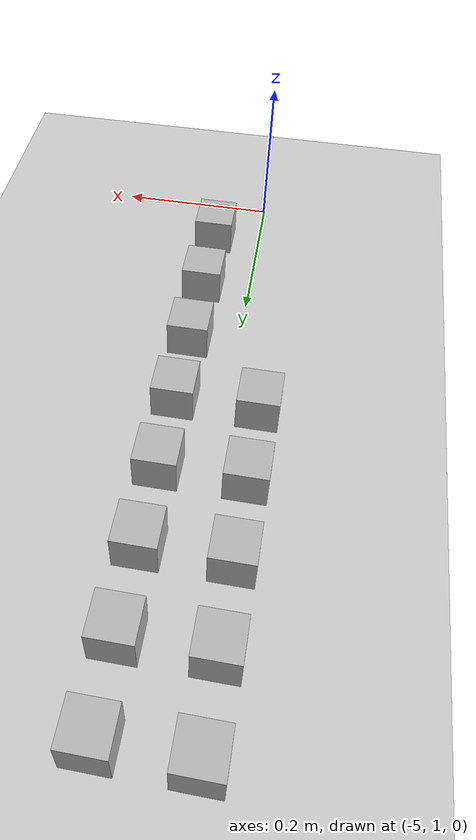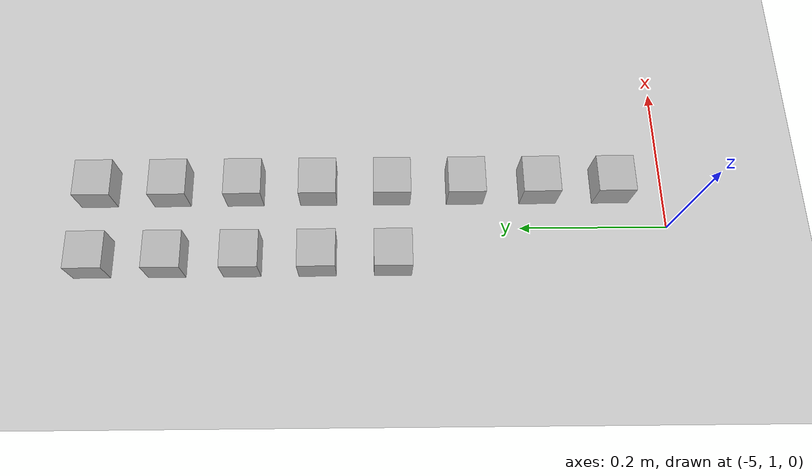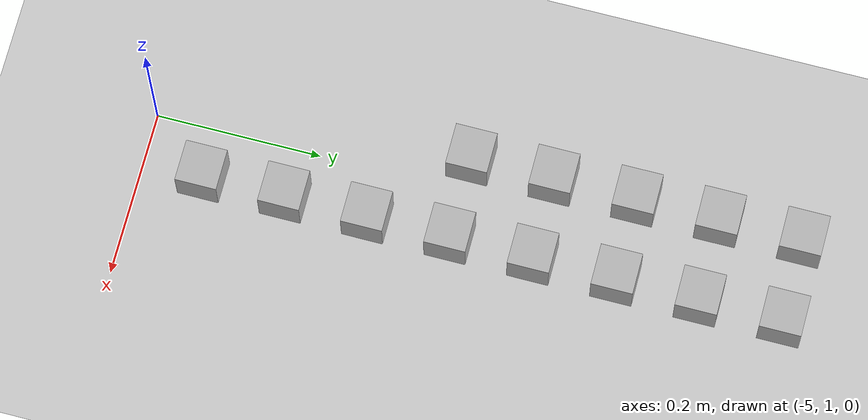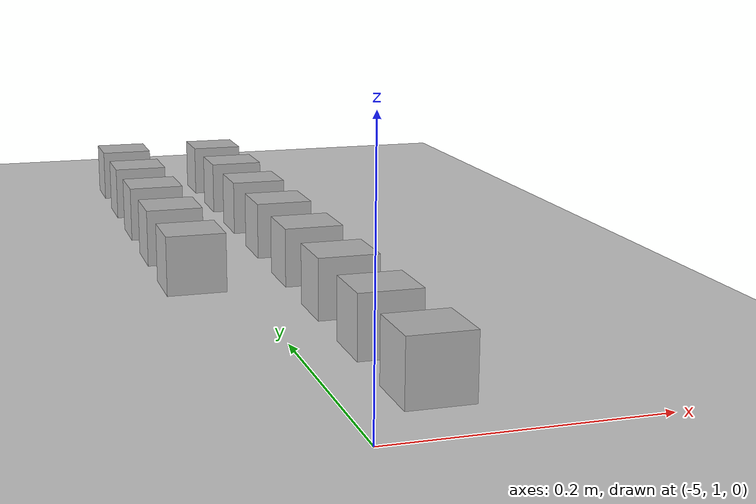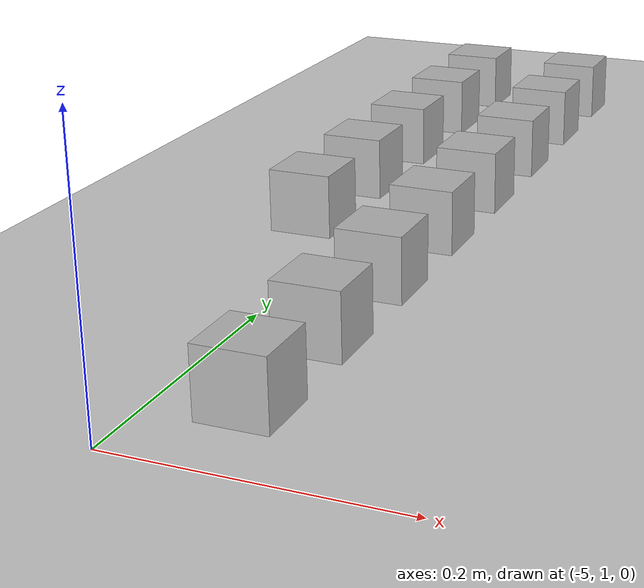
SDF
<sdf version="1.4">
 <world name="default">
  <model name="ground_plane">
   <static>1</static>
   <link name="link">
    <collision name="collision">
     <geometry><plane><normal>0 0 1</normal><size>100 100</size></plane></geometry>
     <surface><friction><ode><mu>100</mu><mu2>50</mu2></ode></friction></surface>
    </collision>
    <visual name="visual">
     <cast_shadows>0</cast_shadows>
     <geometry><plane><normal>0 0 1</normal><size>100 100</size></plane></geometry>
     <material>
      <script><uri>file://media/materials/scripts/gazebo.material</uri><name>Gazebo/Grey</name></script>
     </material>
    </visual>
    <velocity_decay><linear>0</linear><angular>0</angular></velocity_decay>
   </link>
  </model>
  <model name="at135">
   <static>0</static>
   <link name="link">
    <inertial>
     <mass>0.01</mass>
     <inertia><ixx>4e-05</ixx><ixy>0</ixy><ixz>0</ixz><iyy>4e-05</iyy><iyz>0</iyz><izz>4e-05</izz></inertia>
    </inertial>
    <visual name="visual">
     <geometry><box><size>0.05 0.05 0.05</size></box></geometry>
     <material>
      <script>
       <uri>model://at0/materials/scripts</uri>
       <uri>model://at0/materials/textures</uri>
       <name>at0/Diffuse</name>
      </script>
     </material>
    </visual>
    <collision name="collision">
     <geometry><box><size>0.05 0.05 0.05</size></box></geometry>
     <surface><friction><ode><mu>0.8</mu><mu2>0.7</mu2></ode></friction></surface>
    </collision>
    <velocity_decay><linear>0</linear><angular>0</angular></velocity_decay>
   </link>
   <pose>-4.93889 1.07373 0.025 0 -0 0</pose>
  </model>
  <model name="at143">
   <static>0</static>
   <link name="link">
    <inertial>
     <mass>0.01</mass>
     <inertia><ixx>4e-05</ixx><ixy>0</ixy><ixz>0</ixz><iyy>4e-05</iyy><iyz>0</iyz><izz>4e-05</izz></inertia>
    </inertial>
    <visual name="visual">
     <geometry><box><size>0.05 0.05 0.05</size></box></geometry>
     <material>
      <script>
       <uri>model://at0/materials/scripts</uri>
       <uri>model://at0/materials/textures</uri>
       <name>at0/Diffuse</name>
      </script>
     </material>
    </visual>
    <collision name="collision">
     <geometry><box><size>0.05 0.05 0.05</size></box></geometry>
     <surface><friction><ode><mu>0.8</mu><mu2>0.7</mu2></ode></friction></surface>
    </collision>
    <velocity_decay><linear>0</linear><angular>0</angular></velocity_decay>
   </link>
   <pose>-4.93889 1.17373 0.025 0 -0 0</pose>
  </model>
  <model name="at151">
   <static>0</static>
   <link name="link">
    <inertial>
     <mass>0.01</mass>
     <inertia><ixx>4e-05</ixx><ixy>0</ixy><ixz>0</ixz><iyy>4e-05</iyy><iyz>0</iyz><izz>4e-05</izz></inertia>
    </inertial>
    <visual name="visual">
     <geometry><box><size>0.05 0.05 0.05</size></box></geometry>
     <material>
      <script>
       <uri>model://at0/materials/scripts</uri>
       <uri>model://at0/materials/textures</uri>
       <name>at0/Diffuse</name>
      </script>
     </material>
    </visual>
    <collision name="collision">
     <geometry><box><size>0.05 0.05 0.05</size></box></geometry>
     <surface><friction><ode><mu>0.8</mu><mu2>0.7</mu2></ode></friction></surface>
    </collision>
    <velocity_decay><linear>0</linear><angular>0</angular></velocity_decay>
   </link>
   <pose>-4.93889 1.27373 0.025 0 -0 0</pose>
  </model>
  <model name="at158">
   <static>0</static>
   <link name="link">
    <inertial>
     <mass>0.01</mass>
     <inertia><ixx>4e-05</ixx><ixy>0</ixy><ixz>0</ixz><iyy>4e-05</iyy><iyz>0</iyz><izz>4e-05</izz></inertia>
    </inertial>
    <visual name="visual">
     <geometry><box><size>0.05 0.05 0.05</size></box></geometry>
     <material>
      <script>
       <uri>model://at0/materials/scripts</uri>
       <uri>model://at0/materials/textures</uri>
       <name>at0/Diffuse</name>
      </script>
     </material>
    </visual>
    <collision name="collision">
     <geometry><box><size>0.05 0.05 0.05</size></box></geometry>
     <surface><friction><ode><mu>0.8</mu><mu2>0.7</mu2></ode></friction></surface>
    </collision>
    <velocity_decay><linear>0</linear><angular>0</angular></velocity_decay>
   </link>
   <pose>-5.03889 1.37373 0.025 0 -0 0</pose>
  </model>
  <model name="at159">
   <static>0</static>
   <link name="link">
    <inertial>
     <mass>0.01</mass>
     <inertia><ixx>4e-05</ixx><ixy>0</ixy><ixz>0</ixz><iyy>4e-05</iyy><iyz>0</iyz><izz>4e-05</izz></inertia>
    </inertial>
    <visual name="visual">
     <geometry><box><size>0.05 0.05 0.05</size></box></geometry>
     <material>
      <script>
       <uri>model://at0/materials/scripts</uri>
       <uri>model://at0/materials/textures</uri>
       <name>at0/Diffuse</name>
      </script>
     </material>
    </visual>
    <collision name="collision">
     <geometry><box><size>0.05 0.05 0.05</size></box></geometry>
     <surface><friction><ode><mu>0.8</mu><mu2>0.7</mu2></ode></friction></surface>
    </collision>
    <velocity_decay><linear>0</linear><angular>0</angular></velocity_decay>
   </link>
   <pose>-4.93889 1.37373 0.025 0 -0 0</pose>
  </model>
  <model name="at166">
   <static>0</static>
   <link name="link">
    <inertial>
     <mass>0.01</mass>
     <inertia><ixx>4e-05</ixx><ixy>0</ixy><ixz>0</ixz><iyy>4e-05</iyy><iyz>0</iyz><izz>4e-05</izz></inertia>
    </inertial>
    <visual name="visual">
     <geometry><box><size>0.05 0.05 0.05</size></box></geometry>
     <material>
      <script>
       <uri>model://at0/materials/scripts</uri>
       <uri>model://at0/materials/textures</uri>
       <name>at0/Diffuse</name>
      </script>
     </material>
    </visual>
    <collision name="collision">
     <geometry><box><size>0.05 0.05 0.05</size></box></geometry>
     <surface><friction><ode><mu>0.8</mu><mu2>0.7</mu2></ode></friction></surface>
    </collision>
    <velocity_decay><linear>0</linear><angular>0</angular></velocity_decay>
   </link>
   <pose>-5.03889 1.47373 0.025 0 -0 0</pose>
  </model>
  <model name="at167">
   <static>0</static>
   <link name="link">
    <inertial>
     <mass>0.01</mass>
     <inertia><ixx>4e-05</ixx><ixy>0</ixy><ixz>0</ixz><iyy>4e-05</iyy><iyz>0</iyz><izz>4e-05</izz></inertia>
    </inertial>
    <visual name="visual">
     <geometry><box><size>0.05 0.05 0.05</size></box></geometry>
     <material>
      <script>
       <uri>model://at0/materials/scripts</uri>
       <uri>model://at0/materials/textures</uri>
       <name>at0/Diffuse</name>
      </script>
     </material>
    </visual>
    <collision name="collision">
     <geometry><box><size>0.05 0.05 0.05</size></box></geometry>
     <surface><friction><ode><mu>0.8</mu><mu2>0.7</mu2></ode></friction></surface>
    </collision>
    <velocity_decay><linear>0</linear><angular>0</angular></velocity_decay>
   </link>
   <pose>-4.93889 1.47373 0.025 0 -0 0</pose>
  </model>
  <model name="at174">
   <static>0</static>
   <link name="link">
    <inertial>
     <mass>0.01</mass>
     <inertia><ixx>4e-05</ixx><ixy>0</ixy><ixz>0</ixz><iyy>4e-05</iyy><iyz>0</iyz><izz>4e-05</izz></inertia>
    </inertial>
    <visual name="visual">
     <geometry><box><size>0.05 0.05 0.05</size></box></geometry>
     <material>
      <script>
       <uri>model://at0/materials/scripts</uri>
       <uri>model://at0/materials/textures</uri>
       <name>at0/Diffuse</name>
      </script>
     </material>
    </visual>
    <collision name="collision">
     <geometry><box><size>0.05 0.05 0.05</size></box></geometry>
     <surface><friction><ode><mu>0.8</mu><mu2>0.7</mu2></ode></friction></surface>
    </collision>
    <velocity_decay><linear>0</linear><angular>0</angular></velocity_decay>
   </link>
   <pose>-5.03889 1.57373 0.025 0 -0 0</pose>
  </model>
  <model name="at175">
   <static>0</static>
   <link name="link">
    <inertial>
     <mass>0.01</mass>
     <inertia><ixx>4e-05</ixx><ixy>0</ixy><ixz>0</ixz><iyy>4e-05</iyy><iyz>0</iyz><izz>4e-05</izz></inertia>
    </inertial>
    <visual name="visual">
     <geometry><box><size>0.05 0.05 0.05</size></box></geometry>
     <material>
      <script>
       <uri>model://at0/materials/scripts</uri>
       <uri>model://at0/materials/textures</uri>
       <name>at0/Diffuse</name>
      </script>
     </material>
    </visual>
    <collision name="collision">
     <geometry><box><size>0.05 0.05 0.05</size></box></geometry>
     <surface><friction><ode><mu>0.8</mu><mu2>0.7</mu2></ode></friction></surface>
    </collision>
    <velocity_decay><linear>0</linear><angular>0</angular></velocity_decay>
   </link>
   <pose>-4.93889 1.57373 0.025 0 -0 0</pose>
  </model>
  <model name="at182">
   <static>0</static>
   <link name="link">
    <inertial>
     <mass>0.01</mass>
     <inertia><ixx>4e-05</ixx><ixy>0</ixy><ixz>0</ixz><iyy>4e-05</iyy><iyz>0</iyz><izz>4e-05</izz></inertia>
    </inertial>
    <visual name="visual">
     <geometry><box><size>0.05 0.05 0.05</size></box></geometry>
     <material>
      <script>
       <uri>model://at0/materials/scripts</uri>
       <uri>model://at0/materials/textures</uri>
       <name>at0/Diffuse</name>
      </script>
     </material>
    </visual>
    <collision name="collision">
     <geometry><box><size>0.05 0.05 0.05</size></box></geometry>
     <surface><friction><ode><mu>0.8</mu><mu2>0.7</mu2></ode></friction></surface>
    </collision>
    <velocity_decay><linear>0</linear><angular>0</angular></velocity_decay>
   </link>
   <pose>-5.03889 1.67373 0.025 0 -0 0</pose>
  </model>
  <model name="at183">
   <static>0</static>
   <link name="link">
    <inertial>
     <mass>0.01</mass>
     <inertia><ixx>4e-05</ixx><ixy>0</ixy><ixz>0</ixz><iyy>4e-05</iyy><iyz>0</iyz><izz>4e-05</izz></inertia>
    </inertial>
    <visual name="visual">
     <geometry><box><size>0.05 0.05 0.05</size></box></geometry>
     <material>
      <script>
       <uri>model://at0/materials/scripts</uri>
       <uri>model://at0/materials/textures</uri>
       <name>at0/Diffuse</name>
      </script>
     </material>
    </visual>
    <collision name="collision">
     <geometry><box><size>0.05 0.05 0.05</size></box></geometry>
     <surface><friction><ode><mu>0.8</mu><mu2>0.7</mu2></ode></friction></surface>
    </collision>
    <velocity_decay><linear>0</linear><angular>0</angular></velocity_decay>
   </link>
   <pose>-4.93889 1.67373 0.025 0 -0 0</pose>
  </model>
  <model name="at190">
   <static>0</static>
   <link name="link">
    <inertial>
     <mass>0.01</mass>
     <inertia><ixx>4e-05</ixx><ixy>0</ixy><ixz>0</ixz><iyy>4e-05</iyy><iyz>0</iyz><izz>4e-05</izz></inertia>
    </inertial>
    <visual name="visual">
     <geometry><box><size>0.05 0.05 0.05</size></box></geometry>
     <material>
      <script>
       <uri>model://at0/materials/scripts</uri>
       <uri>model://at0/materials/textures</uri>
       <name>at0/Diffuse</name>
      </script>
     </material>
    </visual>
    <collision name="collision">
     <geometry><box><size>0.05 0.05 0.05</size></box></geometry>
     <surface><friction><ode><mu>0.8</mu><mu2>0.7</mu2></ode></friction></surface>
    </collision>
    <velocity_decay><linear>0</linear><angular>0</angular></velocity_decay>
   </link>
   <pose>-5.03889 1.77373 0.025 0 -0 0</pose>
  </model>
  <model name="at191">
   <static>0</static>
   <link name="link">
    <inertial>
     <mass>0.01</mass>
     <inertia><ixx>4e-05</ixx><ixy>0</ixy><ixz>0</ixz><iyy>4e-05</iyy><iyz>0</iyz><izz>4e-05</izz></inertia>
    </inertial>
    <visual name="visual">
     <geometry><box><size>0.05 0.05 0.05</size></box></geometry>
     <material>
      <script>
       <uri>model://at0/materials/scripts</uri>
       <uri>model://at0/materials/textures</uri>
       <name>at0/Diffuse</name>
      </script>
     </material>
    </visual>
    <collision name="collision">
     <geometry><box><size>0.05 0.05 0.05</size></box></geometry>
     <surface><friction><ode><mu>0.8</mu><mu2>0.7</mu2></ode></friction></surface>
    </collision>
    <velocity_decay><linear>0</linear><angular>0</angular></velocity_decay>
   </link>
   <pose>-4.93889 1.77373 0.025 0 -0 0</pose>
  </model>
 </world>
</sdf>
